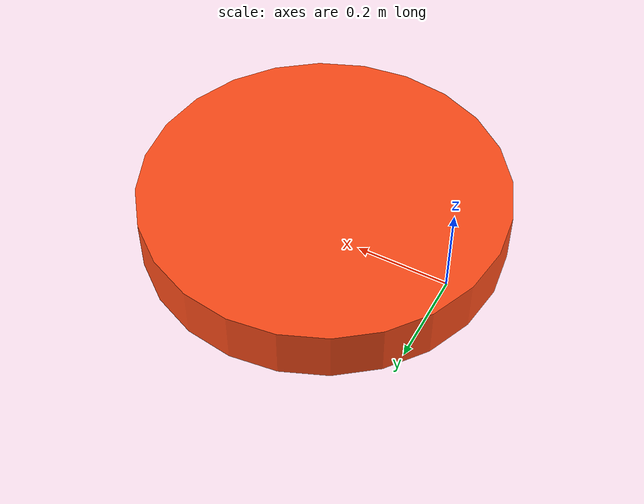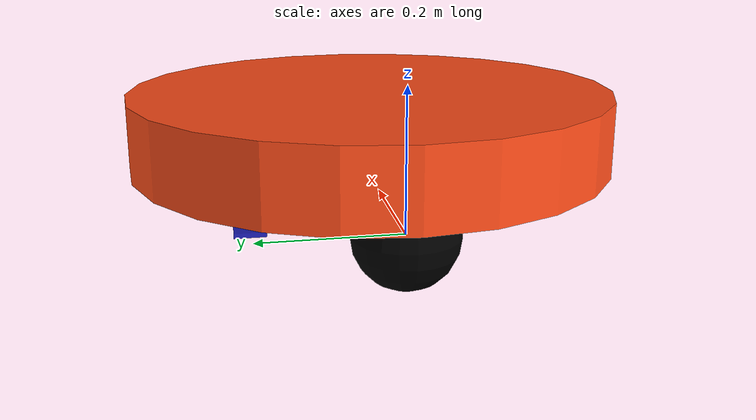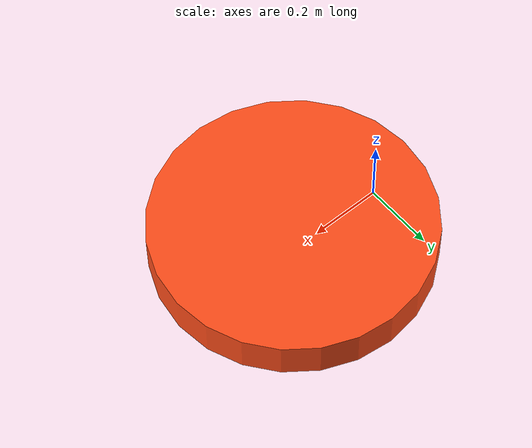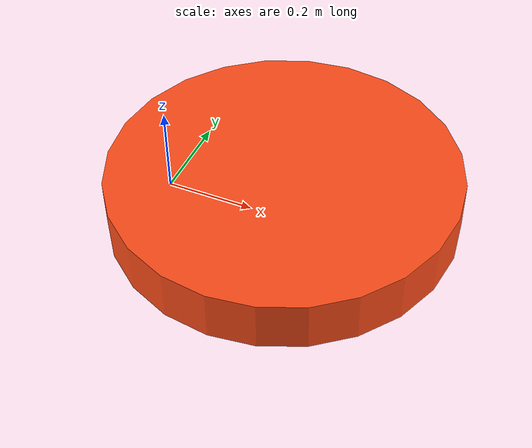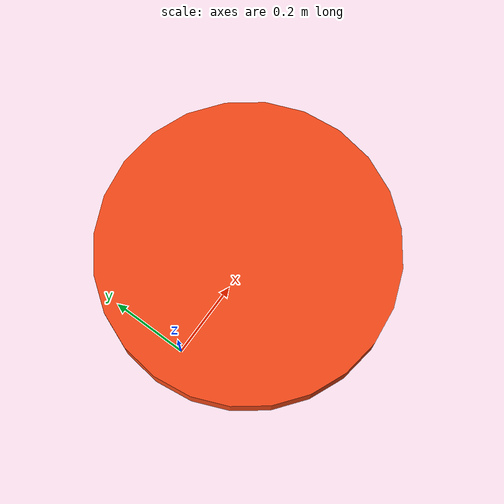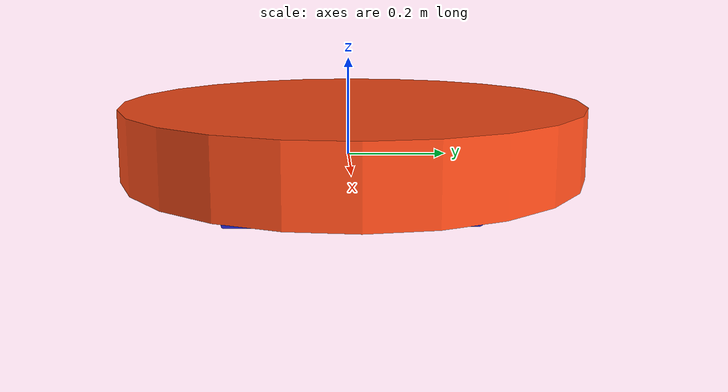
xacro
<?xml version="1.0"?>
<robot xmlns:xacro="http://ros.org/wiki/xacro" name="robot">

  <xacro:include filename="inertial_macros.xacro"/>

  <!-- Materials -->
  <material name="white">
    <color rgba="1 1 1 1"/>
  </material>

  <material name="orange">
    <color rgba="1 0.3 0.1 1"/>
  </material>

  <material name="blue">
    <color rgba="0.2 0.2 1 1"/>
  </material>

  <material name="black">
    <color rgba="0 0 0 1"/>
  </material>

  <!-- Base Link -->
  <link name="base_link"/>

  <!-- Chassis -->
  <joint name="chassis_joint" type="fixed">
    <parent link="base_link"/>
    <child link="chassis"/>
    <origin xyz="-0.1 0 0"/>
  </joint>

  <link name="chassis">
    <visual>
      <origin xyz="0.381 0 0.09"/>
      <geometry>
        <cylinder radius="0.381" length="0.115"/>
      </geometry>
      <material name="orange"/>
    </visual>
    <collision>
      <origin xyz="0.381 0 0.09"/>
      <geometry>
        <cylinder radius="0.381" length="0.115"/>
      </geometry>
    </collision>
    <xacro:inertial_cylinder mass="0.5" radius="0.381" length="0.115">
      <origin xyz="0.381 0 0.09" rpy="0 0 0"/>
    </xacro:inertial_cylinder>
  </link>

  <!-- Left Wheel -->
  <joint name="left_wheel_joint" type="continuous">
    <parent link="base_link"/>
    <child link="left_wheel"/>
    <origin xyz="0.25 0.2 0" rpy="-${pi/2} 0 0"/>
    <axis xyz="0 0 1"/>
  </joint>

  <link name="left_wheel">
    <visual>
      <geometry>
        <cylinder radius="0.08" length="0.0508"/>
      </geometry>
      <material name="blue"/>
    </visual>
    <collision>
      <geometry>
        <cylinder radius="0.08" length="0.0508"/>
      </geometry>
    </collision>
    <xacro:inertial_cylinder mass="0.1" length="0.0508" radius="0.08">
      <origin xyz="0 0 0" rpy="0 0 0"/>
    </xacro:inertial_cylinder>
  </link>

  <!-- Right Wheel -->
  <joint name="right_wheel_joint" type="continuous">
    <parent link="base_link"/>
    <child link="right_wheel"/>
    <origin xyz="0.25 -0.2 0" rpy="${pi/2} 0 0"/>
    <axis xyz="0 0 -1"/>
  </joint>

  <link name="right_wheel">
    <visual>
      <geometry>
        <cylinder radius="0.08" length="0.0508"/>
      </geometry>
      <material name="blue"/>
    </visual>
    <collision>
      <geometry>
        <cylinder radius="0.08" length="0.0508"/>
      </geometry>
    </collision>
    <xacro:inertial_cylinder mass="0.1" length="0.0508" radius="0.08">
      <origin xyz="0 0 0" rpy="0 0 0"/>
    </xacro:inertial_cylinder>
  </link>

  <!-- Caster Wheel -->
  <joint name="caster_wheel_joint" type="fixed">
    <parent link="chassis"/>
    <child link="caster_wheel"/>
    <origin xyz="0.1 0 0"/>
  </joint>

  <link name="caster_wheel">
    <visual>
      <geometry>
        <sphere radius="0.075"/>
      </geometry>
      <material name="black"/>
    </visual>
    <collision>
      <geometry>
        <sphere radius="0.075"/>
      </geometry>
    </collision>
    <xacro:inertial_sphere mass="0.1" radius="0.075">
      <origin xyz="0 0 0" rpy="0 0 0"/>
    </xacro:inertial_sphere>
  </link>

</robot>
